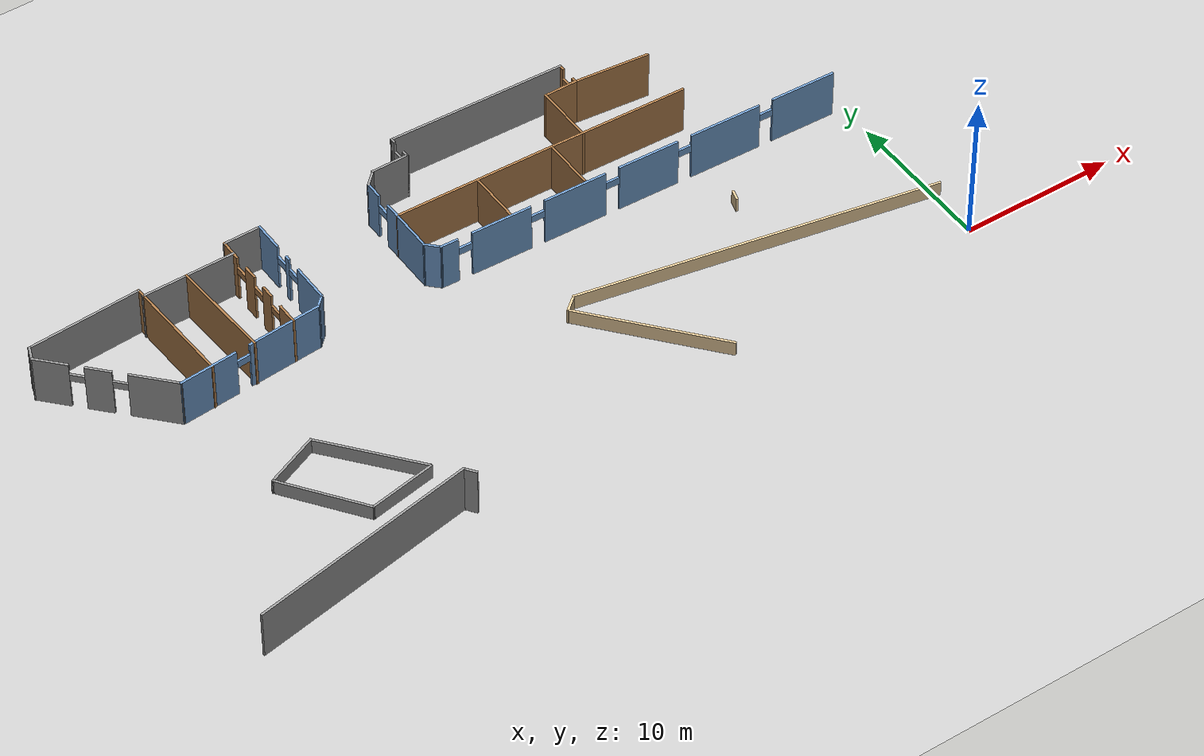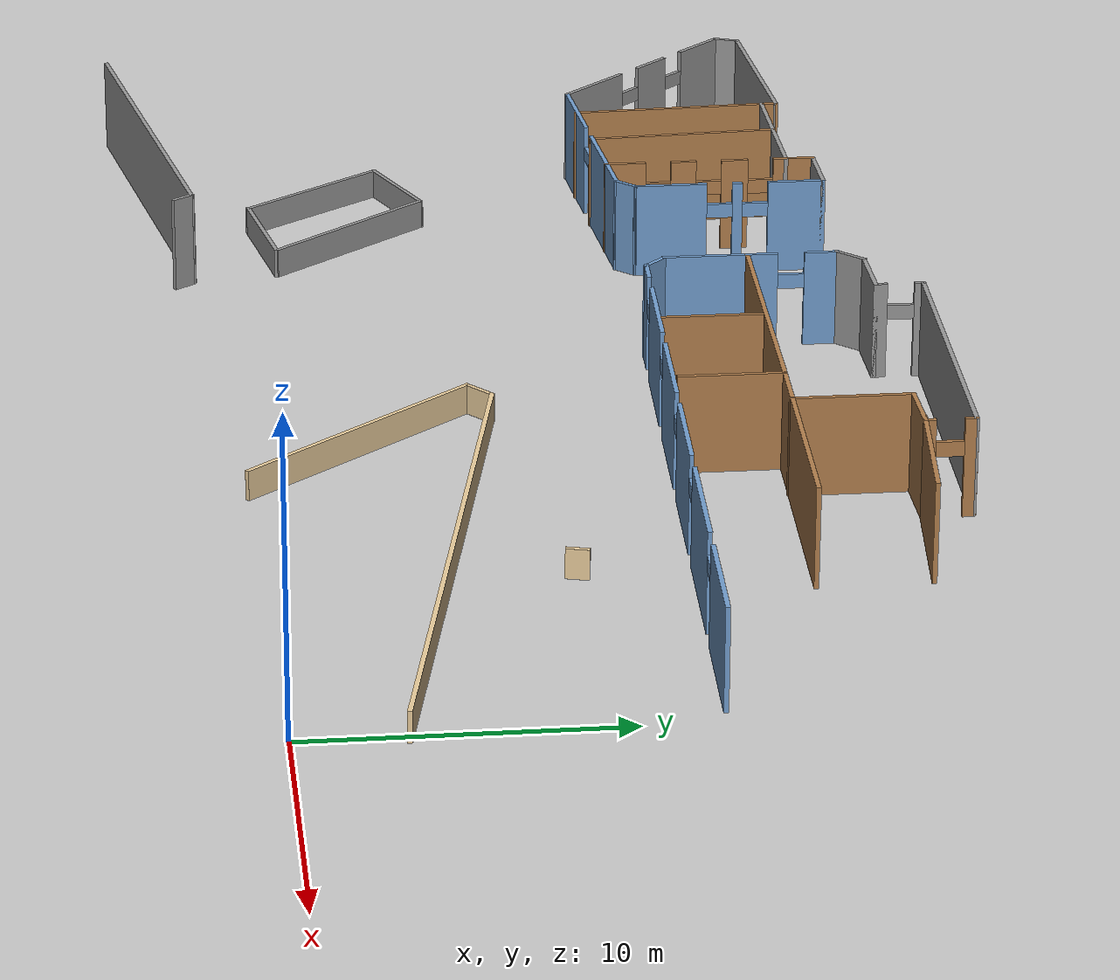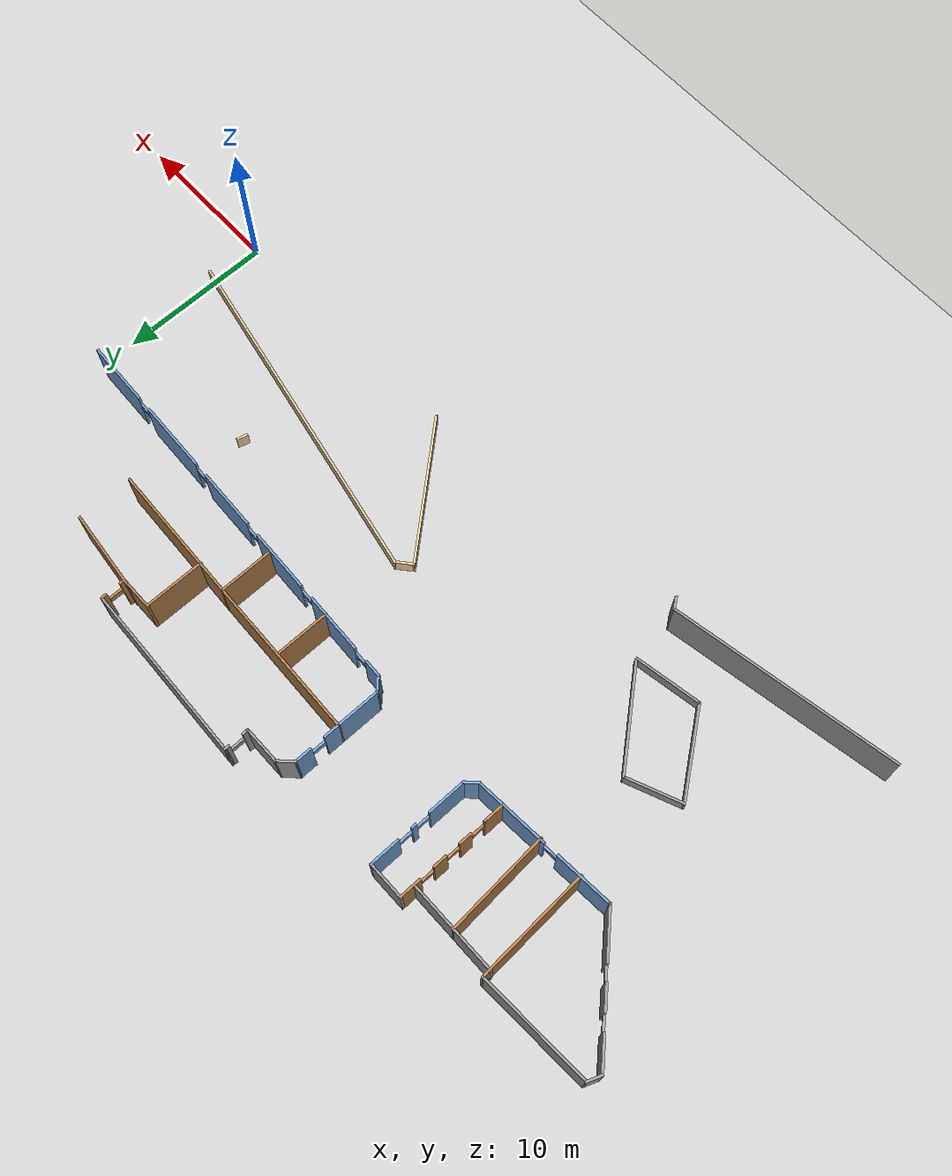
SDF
<sdf version="1.6">
 <world name="default">
  <model name="ground_plane">
   <static>1</static>
   <link name="link">
    <collision name="collision">
     <geometry><plane><normal>0 0 1</normal><size>100 100</size></plane></geometry>
     <surface><friction><ode><mu>100</mu><mu2>50</mu2></ode></friction></surface>
    </collision>
    <visual name="visual">
     <cast_shadows>0</cast_shadows>
     <geometry><plane><normal>0 0 1</normal><size>100 100</size></plane></geometry>
     <material>
      <script><uri>file://media/materials/scripts/gazebo.material</uri><name>Gazebo/Grey</name></script>
     </material>
    </visual>
   </link>
  </model>
  <model name="compound">
   <pose>3.54588 -0.628009 0 0 -0 0</pose>
   <link name="Wall_1">
    <pose>-17.7632 13.6017 0 0 -0 3.10436</pose>
    <visual name="Wall_1_Visual_0">
     <pose>-11.3294 0 1.25 0 -0 0</pose>
     <geometry><box><size>4.30756 0.15 4.0</size></box></geometry>
     <material>
      <script><uri>file://media/materials/scripts/gazebo.material</uri><name>Gazebo/Grey</name></script>
      <ambient>0.447059 0.623529 0.811765 1</ambient>
     </material>
     <meta><layer>0</layer></meta>
    </visual>
    <collision name="Wall_1_Collision_0">
     <geometry><box><size>4.30756 0.15 4.0</size></box></geometry>
     <pose>-11.3294 0 1.25 0 -0 0</pose>
    </collision>
    <visual name="Wall_1_Visual_1">
     <pose>-5.89487 0 1.25 0 -0 0</pose>
     <geometry><box><size>4.76144 0.15 4.0</size></box></geometry>
     <material>
      <script><uri>file://media/materials/scripts/gazebo.material</uri><name>Gazebo/Grey</name></script>
      <ambient>0.447059 0.623529 0.811765 1</ambient>
     </material>
     <meta><layer>0</layer></meta>
    </visual>
    <collision name="Wall_1_Collision_1">
     <geometry><box><size>4.76144 0.15 4.0</size></box></geometry>
     <pose>-5.89487 0 1.25 0 -0 0</pose>
    </collision>
    <visual name="Wall_1_Visual_2">
     <pose>-0.581414 0 1.25 0 -0 0</pose>
     <geometry><box><size>4.06547 0.15 4.0</size></box></geometry>
     <material>
      <script><uri>file://media/materials/scripts/gazebo.material</uri><name>Gazebo/Grey</name></script>
      <ambient>0.447059 0.623529 0.811765 1</ambient>
     </material>
     <meta><layer>0</layer></meta>
    </visual>
    <collision name="Wall_1_Collision_2">
     <geometry><box><size>4.06547 0.15 4.0</size></box></geometry>
     <pose>-0.581414 0 1.25 0 -0 0</pose>
    </collision>
    <visual name="Wall_1_Visual_3">
     <pose>4.42952 0 1.25 0 -0 0</pose>
     <geometry><box><size>4.15639 0.15 4.0</size></box></geometry>
     <material>
      <script><uri>file://media/materials/scripts/gazebo.material</uri><name>Gazebo/Grey</name></script>
      <ambient>0.447059 0.623529 0.811765 1</ambient>
     </material>
     <meta><layer>0</layer></meta>
    </visual>
    <collision name="Wall_1_Collision_3">
     <geometry><box><size>4.15639 0.15 4.0</size></box></geometry>
     <pose>4.42952 0 1.25 0 -0 0</pose>
    </collision>
    <visual name="Wall_1_Visual_4">
     <pose>9.39757 0 1.25 0 -0 0</pose>
     <geometry><box><size>3.97971 0.15 4.0</size></box></geometry>
     <material>
      <script><uri>file://media/materials/scripts/gazebo.material</uri><name>Gazebo/Grey</name></script>
      <ambient>0.447059 0.623529 0.811765 1</ambient>
     </material>
     <meta><layer>0</layer></meta>
    </visual>
    <collision name="Wall_1_Collision_4">
     <geometry><box><size>3.97971 0.15 4.0</size></box></geometry>
     <pose>9.39757 0 1.25 0 -0 0</pose>
    </collision>
    <visual name="Wall_1_Visual_5">
     <pose>12.8853 0 1.25 0 -0 0</pose>
     <geometry><box><size>1.19573 0.15 4.0</size></box></geometry>
     <material>
      <script><uri>file://media/materials/scripts/gazebo.material</uri><name>Gazebo/Grey</name></script>
      <ambient>0.447059 0.623529 0.811765 1</ambient>
     </material>
     <meta><layer>0</layer></meta>
    </visual>
    <collision name="Wall_1_Collision_5">
     <geometry><box><size>1.19573 0.15 4.0</size></box></geometry>
     <pose>12.8853 0 1.25 0 -0 0</pose>
    </collision>
    <visual name="Wall_1_Visual_6">
     <pose>-8.72559 0 2.25 0 -0 0</pose>
     <geometry><box><size>0.9 0.15 0.5</size></box></geometry>
     <material>
      <script><uri>file://media/materials/scripts/gazebo.material</uri><name>Gazebo/Grey</name></script>
      <ambient>0.447059 0.623529 0.811765 1</ambient>
     </material>
     <meta><layer>0</layer></meta>
    </visual>
    <collision name="Wall_1_Collision_6">
     <geometry><box><size>0.9 0.15 0.5</size></box></geometry>
     <pose>-8.72559 0 2.25 0 -0 0</pose>
    </collision>
    <visual name="Wall_1_Visual_7">
     <pose>-3.06415 0 2.25 0 -0 0</pose>
     <geometry><box><size>0.9 0.15 0.5</size></box></geometry>
     <material>
      <script><uri>file://media/materials/scripts/gazebo.material</uri><name>Gazebo/Grey</name></script>
      <ambient>0.447059 0.623529 0.811765 1</ambient>
     </material>
     <meta><layer>0</layer></meta>
    </visual>
    <collision name="Wall_1_Collision_7">
     <geometry><box><size>0.9 0.15 0.5</size></box></geometry>
     <pose>-3.06415 0 2.25 0 -0 0</pose>
    </collision>
    <visual name="Wall_1_Visual_8">
     <pose>1.90132 0 2.25 0 -0 0</pose>
     <geometry><box><size>0.9 0.15 0.5</size></box></geometry>
     <material>
      <script><uri>file://media/materials/scripts/gazebo.material</uri><name>Gazebo/Grey</name></script>
      <ambient>0.447059 0.623529 0.811765 1</ambient>
     </material>
     <meta><layer>0</layer></meta>
    </visual>
    <collision name="Wall_1_Collision_8">
     <geometry><box><size>0.9 0.15 0.5</size></box></geometry>
     <pose>1.90132 0 2.25 0 -0 0</pose>
    </collision>
    <visual name="Wall_1_Visual_9">
     <pose>6.95771 0 2.25 0 -0 0</pose>
     <geometry><box><size>0.9 0.15 0.5</size></box></geometry>
     <material>
      <script><uri>file://media/materials/scripts/gazebo.material</uri><name>Gazebo/Grey</name></script>
      <ambient>0.447059 0.623529 0.811765 1</ambient>
     </material>
     <meta><layer>0</layer></meta>
    </visual>
    <collision name="Wall_1_Collision_9">
     <geometry><box><size>0.9 0.15 0.5</size></box></geometry>
     <pose>6.95771 0 2.25 0 -0 0</pose>
    </collision>
    <visual name="Wall_1_Visual_10">
     <pose>11.8374 0 2.25 0 -0 0</pose>
     <geometry><box><size>0.9 0.15 0.5</size></box></geometry>
     <material>
      <script><uri>file://media/materials/scripts/gazebo.material</uri><name>Gazebo/Grey</name></script>
      <ambient>0.447059 0.623529 0.811765 1</ambient>
     </material>
     <meta><layer>0</layer></meta>
    </visual>
    <collision name="Wall_1_Collision_10">
     <geometry><box><size>0.9 0.15 0.5</size></box></geometry>
     <pose>11.8374 0 2.25 0 -0 0</pose>
    </collision>
   </link>
   <link name="Wall_13">
    <collision name="Wall_13_Collision">
     <geometry><box><size>9.90428 0.15 1</size></box></geometry>
     <pose>0 0 0.5 0 -0 0</pose>
    </collision>
    <visual name="Wall_13_Visual">
     <pose>0 0 0.5 0 -0 0</pose>
     <geometry><box><size>9.90428 0.15 1</size></box></geometry>
     <material>
      <script><uri>file://media/materials/scripts/gazebo.material</uri><name>Gazebo/Grey</name></script>
      <ambient>0.921569 0.807843 0.615686 1</ambient>
     </material>
     <meta><layer>0</layer></meta>
    </visual>
    <pose>-23.6257 3.99058 0 0 -0 2.27942</pose>
   </link>
   <link name="Wall_14">
    <collision name="Wall_14_Collision">
     <geometry><box><size>1.29262 0.15 1</size></box></geometry>
     <pose>0 0 0.5 0 -0 0</pose>
    </collision>
    <visual name="Wall_14_Visual">
     <pose>0 0 0.5 0 -0 0</pose>
     <geometry><box><size>1.29262 0.15 1</size></box></geometry>
     <material>
      <script><uri>file://media/materials/scripts/gazebo.material</uri><name>Gazebo/Grey</name></script>
      <ambient>0.921569 0.807843 0.615686 1</ambient>
     </material>
     <meta><layer>0</layer></meta>
    </visual>
    <pose>-26.3627 8.06158 0 0 -0 0.699893</pose>
   </link>
   <link name="Wall_15">
    <collision name="Wall_15_Collision">
     <geometry><box><size>23.2991 0.15 1</size></box></geometry>
     <pose>0 0 0.5 0 -0 0</pose>
    </collision>
    <visual name="Wall_15_Visual">
     <pose>0 0 0.5 0 -0 0</pose>
     <geometry><box><size>23.2991 0.15 1</size></box></geometry>
     <material>
      <script><uri>file://media/materials/scripts/gazebo.material</uri><name>Gazebo/Grey</name></script>
      <ambient>0.921569 0.807843 0.615686 1</ambient>
     </material>
     <meta><layer>0</layer></meta>
    </visual>
    <pose>-14.5637 6.22158 0 0 -0 -0.19194</pose>
   </link>
   <link name="Wall_2">
    <collision name="Wall_2_Collision">
     <geometry><box><size>1.1338 0.15 4.0</size></box></geometry>
     <pose>0 0 1.25 0 -0 0</pose>
    </collision>
    <visual name="Wall_2_Visual">
     <pose>0 0 1.25 0 -0 0</pose>
     <geometry><box><size>1.1338 0.15 4.0</size></box></geometry>
     <material>
      <script><uri>file://media/materials/scripts/gazebo.material</uri><name>Gazebo/Grey</name></script>
      <ambient>0.447059 0.623529 0.811765 1</ambient>
     </material>
     <meta><layer>0</layer></meta>
    </visual>
    <pose>-31.5098 14.4485 0 0 -0 2.35619</pose>
   </link>
   <link name="Wall_233">
    <collision name="Wall_233_Collision">
     <geometry><box><size>5.21653 0.15 4.0</size></box></geometry>
     <pose>0 0 1.25 0 -0 0</pose>
    </collision>
    <visual name="Wall_233_Visual">
     <pose>0 0 1.25 0 -0 0</pose>
     <geometry><box><size>5.21653 0.15 4.0</size></box></geometry>
     <material>
      <script><uri>file://media/materials/scripts/gazebo.material</uri><name>Gazebo/Wood</name></script>
      <ambient>1 1 1 1</ambient>
     </material>
     <meta><layer>0</layer></meta>
    </visual>
    <pose>-14.9305 20.8107 0 0 -0 3.04125</pose>
   </link>
   <link name="Wall_27">
    <collision name="Wall_27_Collision">
     <geometry><box><size>0.896268 0.15 4.0</size></box></geometry>
     <pose>0 0 1.25 0 -0 0</pose>
    </collision>
    <visual name="Wall_27_Visual">
     <pose>0 0 1.25 0 -0 0</pose>
     <geometry><box><size>0.896268 0.15 4.0</size></box></geometry>
     <material>
      <script><uri>file://media/materials/scripts/gazebo.material</uri><name>Gazebo/Grey</name></script>
      <ambient>1 1 1 1</ambient>
     </material>
     <meta><layer>0</layer></meta>
    </visual>
    <pose>-39.2137 -1.08432 0 0 -0 2.20525</pose>
   </link>
   <link name="Wall_3">
    <pose>-31.8577 17.7214 0 0 -0 1.5708</pose>
    <visual name="Wall_3_Visual_0">
     <pose>-1.04496 0 1.25 0 -0 0</pose>
     <geometry><box><size>3.91008 0.15 4.0</size></box></geometry>
     <material>
      <script><uri>file://media/materials/scripts/gazebo.material</uri><name>Gazebo/Grey</name></script>
      <ambient>0.447059 0.623529 0.811765 1</ambient>
     </material>
     <meta><layer>0</layer></meta>
    </visual>
    <collision name="Wall_3_Collision_0">
     <geometry><box><size>3.91008 0.15 4.0</size></box></geometry>
     <pose>-1.04496 0 1.25 0 -0 0</pose>
    </collision>
    <visual name="Wall_3_Visual_1">
     <pose>2.40504 0 1.25 0 -0 0</pose>
     <geometry><box><size>1.18992 0.15 4.0</size></box></geometry>
     <material>
      <script><uri>file://media/materials/scripts/gazebo.material</uri><name>Gazebo/Grey</name></script>
      <ambient>0.447059 0.623529 0.811765 1</ambient>
     </material>
     <meta><layer>0</layer></meta>
    </visual>
    <collision name="Wall_3_Collision_1">
     <geometry><box><size>1.18992 0.15 4.0</size></box></geometry>
     <pose>2.40504 0 1.25 0 -0 0</pose>
    </collision>
    <visual name="Wall_3_Visual_2">
     <pose>1.36008 0 2.25 0 -0 0</pose>
     <geometry><box><size>0.9 0.15 0.5</size></box></geometry>
     <material>
      <script><uri>file://media/materials/scripts/gazebo.material</uri><name>Gazebo/Grey</name></script>
      <ambient>0.447059 0.623529 0.811765 1</ambient>
     </material>
     <meta><layer>0</layer></meta>
    </visual>
    <collision name="Wall_3_Collision_2">
     <geometry><box><size>0.9 0.15 0.5</size></box></geometry>
     <pose>1.36008 0 2.25 0 -0 0</pose>
    </collision>
   </link>
   <link name="Wall_34">
    <collision name="Wall_34_Collision">
     <geometry><box><size>0.75 0.15 1</size></box></geometry>
     <pose>0 0 0.5 0 -0 0</pose>
    </collision>
    <visual name="Wall_34_Visual">
     <pose>0 0 0.5 0 -0 0</pose>
     <geometry><box><size>0.75 0.15 1</size></box></geometry>
     <material>
      <script><uri>file://media/materials/scripts/gazebo.material</uri><name>Gazebo/Grey</name></script>
      <ambient>0.921569 0.807843 0.615686 1</ambient>
     </material>
     <meta><layer>0</layer></meta>
    </visual>
    <pose>-13.6151 9.87736 0 0 -0 1.309</pose>
   </link>
   <link name="Wall_45">
    <collision name="Wall_45_Collision">
     <geometry><box><size>14.9409 0.15 4.0</size></box></geometry>
     <pose>0 0 1.25 0 -0 0</pose>
    </collision>
    <visual name="Wall_45_Visual">
     <pose>0 0 1.25 0 -0 0</pose>
     <geometry><box><size>14.9409 0.15 4.0</size></box></geometry>
     <material>
      <script><uri>file://media/materials/scripts/gazebo.material</uri><name>Gazebo/Grey</name></script>
      <ambient>1 1 1 1</ambient>
     </material>
     <meta><layer>0</layer></meta>
    </visual>
    <pose>-46.71 -2.11245 0 0 -0 -2.96095</pose>
   </link>
   <link name="Wall_47">
    <collision name="Wall_47_Collision">
     <geometry><box><size>7.06002 0.15 1</size></box></geometry>
     <pose>0 0 0.5 0 -0 0</pose>
    </collision>
    <visual name="Wall_47_Visual">
     <pose>0 0 0.5 0 -0 0</pose>
     <geometry><box><size>7.06002 0.15 1</size></box></geometry>
     <material>
      <script><uri>file://media/materials/scripts/gazebo.material</uri><name>Gazebo/Grey</name></script>
      <ambient>1 1 1 1</ambient>
     </material>
     <meta><layer>0</layer></meta>
    </visual>
    <pose>-41.9392 4.87008 0 0 -0 2.26459</pose>
   </link>
   <link name="Wall_48">
    <collision name="Wall_48_Collision">
     <geometry><box><size>3.77958 0.15 1</size></box></geometry>
     <pose>0 0 0.5 0 -0 0</pose>
    </collision>
    <visual name="Wall_48_Visual">
     <pose>0 0 0.5 0 -0 0</pose>
     <geometry><box><size>3.77958 0.15 1</size></box></geometry>
     <material>
      <script><uri>file://media/materials/scripts/gazebo.material</uri><name>Gazebo/Grey</name></script>
      <ambient>1 1 1 1</ambient>
     </material>
     <meta><layer>0</layer></meta>
    </visual>
    <pose>-45.8187 6.81608 0 0 -0 -2.73934</pose>
   </link>
   <link name="Wall_49">
    <collision name="Wall_49_Collision">
     <geometry><box><size>6.0519 0.15 1</size></box></geometry>
     <pose>0 0 0.5 0 -0 0</pose>
    </collision>
    <visual name="Wall_49_Visual">
     <pose>0 0 0.5 0 -0 0</pose>
     <geometry><box><size>6.0519 0.15 1</size></box></geometry>
     <material>
      <script><uri>file://media/materials/scripts/gazebo.material</uri><name>Gazebo/Grey</name></script>
      <ambient>1 1 1 1</ambient>
     </material>
     <meta><layer>0</layer></meta>
    </visual>
    <pose>-45.7267 3.73858 0 0 -0 -0.930887</pose>
   </link>
   <link name="Wall_5">
    <collision name="Wall_5_Collision">
     <geometry><box><size>1.25 0.15 4.0</size></box></geometry>
     <pose>0 0 1.25 0 -0 0</pose>
    </collision>
    <visual name="Wall_5_Visual">
     <pose>0 0 1.25 0 -0 0</pose>
     <geometry><box><size>1.25 0.15 4.0</size></box></geometry>
     <material>
      <script><uri>file://media/materials/scripts/gazebo.material</uri><name>Gazebo/Grey</name></script>
      <ambient>1 1 1 1</ambient>
     </material>
     <meta><layer>0</layer></meta>
    </visual>
    <pose>-31.4688 21.0353 0 0 -0 0.785398</pose>
   </link>
   <link name="Wall_50">
    <collision name="Wall_50_Collision">
     <geometry><box><size>4.45255 0.15 1</size></box></geometry>
     <pose>0 0 0.5 0 -0 0</pose>
    </collision>
    <visual name="Wall_50_Visual">
     <pose>0 0 0.5 0 -0 0</pose>
     <geometry><box><size>4.45255 0.15 1</size></box></geometry>
     <material>
      <script><uri>file://media/materials/scripts/gazebo.material</uri><name>Gazebo/Grey</name></script>
      <ambient>1 1 1 1</ambient>
     </material>
     <meta><layer>0</layer></meta>
    </visual>
    <pose>-41.8472 1.75308 0 0 -0 0.178253</pose>
   </link>
   <link name="Wall_59">
    <collision name="Wall_59_Collision">
     <geometry><box><size>9.16964 0.15 4.0</size></box></geometry>
     <pose>0 0 1.25 0 -0 0</pose>
    </collision>
    <visual name="Wall_59_Visual">
     <pose>0 0 1.25 0 -0 0</pose>
     <geometry><box><size>9.16964 0.15 4.0</size></box></geometry>
     <material>
      <script><uri>file://media/materials/scripts/gazebo.material</uri><name>Gazebo/Wood</name></script>
      <ambient>1 1 1 1</ambient>
     </material>
     <meta><layer>0</layer></meta>
    </visual>
    <pose>-16.9166 17.127 0 0 -0 3.10389</pose>
   </link>
   <link name="Wall_60">
    <collision name="Wall_60_Collision">
     <geometry><box><size>3.5 0.15 4.0</size></box></geometry>
     <pose>0 0 1.25 0 -0 0</pose>
    </collision>
    <visual name="Wall_60_Visual">
     <pose>0 0 1.25 0 -0 0</pose>
     <geometry><box><size>3.5 0.15 4.0</size></box></geometry>
     <material>
      <script><uri>file://media/materials/scripts/gazebo.material</uri><name>Gazebo/Wood</name></script>
      <ambient>1 1 1 1</ambient>
     </material>
     <meta><layer>0</layer></meta>
    </visual>
    <pose>-21.4232 15.6219 0 0 -0 -1.5708</pose>
   </link>
   <link name="Wall_62">
    <collision name="Wall_62_Collision">
     <geometry><box><size>10.5892 0.15 4.0</size></box></geometry>
     <pose>0 0 1.25 0 -0 0</pose>
    </collision>
    <visual name="Wall_62_Visual">
     <pose>0 0 1.25 0 -0 0</pose>
     <geometry><box><size>10.5892 0.15 4.0</size></box></geometry>
     <material>
      <script><uri>file://media/materials/scripts/gazebo.material</uri><name>Gazebo/Wood</name></script>
      <ambient>1 1 1 1</ambient>
     </material>
     <meta><layer>0</layer></meta>
    </visual>
    <pose>-26.6406 17.4482 0 0 -0 3.11261</pose>
   </link>
   <link name="Wall_64">
    <collision name="Wall_64_Collision">
     <geometry><box><size>2.5 0.15 4.0</size></box></geometry>
     <pose>0 0 1.25 0 -0 0</pose>
    </collision>
    <visual name="Wall_64_Visual">
     <pose>0 0 1.25 0 -0 0</pose>
     <geometry><box><size>2.5 0.15 4.0</size></box></geometry>
     <material>
      <script><uri>file://media/materials/scripts/gazebo.material</uri><name>Gazebo/Grey</name></script>
      <ambient>1 1 1 1</ambient>
     </material>
     <meta><layer>0</layer></meta>
    </visual>
    <pose>-29.9049 21.4242 0 0 -0 0</pose>
   </link>
   <link name="Wall_65">
    <pose>-28.7299 22.2242 0 0 -0 1.5708</pose>
    <visual name="Wall_65_Visual_0">
     <pose>-0.637416 0 1.25 0 -0 0</pose>
     <geometry><box><size>0.475168 0.15 4.0</size></box></geometry>
     <material>
      <script><uri>file://media/materials/scripts/gazebo.material</uri><name>Gazebo/Grey</name></script>
      <ambient>1 1 1 1</ambient>
     </material>
     <meta><layer>0</layer></meta>
    </visual>
    <collision name="Wall_65_Collision_0">
     <geometry><box><size>0.475168 0.15 4.0</size></box></geometry>
     <pose>-0.637416 0 1.25 0 -0 0</pose>
    </collision>
    <visual name="Wall_65_Visual_1">
     <pose>0.687584 0 1.25 0 -0 0</pose>
     <geometry><box><size>0.374832 0.15 4.0</size></box></geometry>
     <material>
      <script><uri>file://media/materials/scripts/gazebo.material</uri><name>Gazebo/Grey</name></script>
      <ambient>1 1 1 1</ambient>
     </material>
     <meta><layer>0</layer></meta>
    </visual>
    <collision name="Wall_65_Collision_1">
     <geometry><box><size>0.374832 0.15 4.0</size></box></geometry>
     <pose>0.687584 0 1.25 0 -0 0</pose>
    </collision>
    <visual name="Wall_65_Visual_2">
     <pose>0.050168 0 2.25 0 -0 0</pose>
     <geometry><box><size>0.9 0.15 0.5</size></box></geometry>
     <material>
      <script><uri>file://media/materials/scripts/gazebo.material</uri><name>Gazebo/Grey</name></script>
      <ambient>1 1 1 1</ambient>
     </material>
     <meta><layer>0</layer></meta>
    </visual>
    <collision name="Wall_65_Collision_2">
     <geometry><box><size>0.9 0.15 0.5</size></box></geometry>
     <pose>0.050168 0 2.25 0 -0 0</pose>
    </collision>
   </link>
   <link name="Wall_66">
    <collision name="Wall_66_Collision">
     <geometry><box><size>11.6776 0.15 4.0</size></box></geometry>
     <pose>0 0 1.25 0 -0 0</pose>
    </collision>
    <visual name="Wall_66_Visual">
     <pose>0 0 1.25 0 -0 0</pose>
     <geometry><box><size>11.6776 0.15 4.0</size></box></geometry>
     <material>
      <script><uri>file://media/materials/scripts/gazebo.material</uri><name>Gazebo/Grey</name></script>
      <ambient>1 1 1 1</ambient>
     </material>
     <meta><layer>0</layer></meta>
    </visual>
    <pose>-22.9693 22.8307 0 0 -0 -0.033573</pose>
   </link>
   <link name="Wall_67">
    <pose>-17.2087 21.8372 0 0 -0 -1.5708</pose>
    <visual name="Wall_67_Visual_0">
     <pose>-0.657503 0 1.25 0 -0 0</pose>
     <geometry><box><size>0.434994 0.15 4.0</size></box></geometry>
     <material>
      <script><uri>file://media/materials/scripts/gazebo.material</uri><name>Gazebo/Wood</name></script>
      <ambient>1 1 1 1</ambient>
     </material>
     <meta><layer>0</layer></meta>
    </visual>
    <collision name="Wall_67_Collision_0">
     <geometry><box><size>0.434994 0.15 4.0</size></box></geometry>
     <pose>-0.657503 0 1.25 0 -0 0</pose>
    </collision>
    <visual name="Wall_67_Visual_1">
     <pose>0.667497 0 1.25 0 -0 0</pose>
     <geometry><box><size>0.415006 0.15 4.0</size></box></geometry>
     <material>
      <script><uri>file://media/materials/scripts/gazebo.material</uri><name>Gazebo/Wood</name></script>
      <ambient>1 1 1 1</ambient>
     </material>
     <meta><layer>0</layer></meta>
    </visual>
    <collision name="Wall_67_Collision_1">
     <geometry><box><size>0.415006 0.15 4.0</size></box></geometry>
     <pose>0.667497 0 1.25 0 -0 0</pose>
    </collision>
    <visual name="Wall_67_Visual_2">
     <pose>0.009994 0 2.25 0 -0 0</pose>
     <geometry><box><size>0.9 0.15 0.5</size></box></geometry>
     <material>
      <script><uri>file://media/materials/scripts/gazebo.material</uri><name>Gazebo/Wood</name></script>
      <ambient>1 1 1 1</ambient>
     </material>
     <meta><layer>0</layer></meta>
    </visual>
    <collision name="Wall_67_Collision_2">
     <geometry><box><size>0.9 0.15 0.5</size></box></geometry>
     <pose>0.009994 0 2.25 0 -0 0</pose>
    </collision>
   </link>
   <link name="Wall_68">
    <collision name="Wall_68_Collision">
     <geometry><box><size>2.25 0.15 4.0</size></box></geometry>
     <pose>0 0 1.25 0 -0 0</pose>
    </collision>
    <visual name="Wall_68_Visual">
     <pose>0 0 1.25 0 -0 0</pose>
     <geometry><box><size>2.25 0.15 4.0</size></box></geometry>
     <material>
      <script><uri>file://media/materials/scripts/gazebo.material</uri><name>Gazebo/Wood</name></script>
      <ambient>1 1 1 1</ambient>
     </material>
     <meta><layer>0</layer></meta>
    </visual>
    <pose>-18.2587 21.0372 0 0 -0 3.14159</pose>
   </link>
   <link name="Wall_69">
    <collision name="Wall_69_Collision">
     <geometry><box><size>4 0.15 4.0</size></box></geometry>
     <pose>0 0 1.25 0 -0 0</pose>
    </collision>
    <visual name="Wall_69_Visual">
     <pose>0 0 1.25 0 -0 0</pose>
     <geometry><box><size>4 0.15 4.0</size></box></geometry>
     <material>
      <script><uri>file://media/materials/scripts/gazebo.material</uri><name>Gazebo/Wood</name></script>
      <ambient>1 1 1 1</ambient>
     </material>
     <meta><layer>0</layer></meta>
    </visual>
    <pose>-19.3087 19.1122 0 0 -0 -1.5708</pose>
   </link>
   <link name="Wall_71">
    <collision name="Wall_71_Collision">
     <geometry><box><size>2.5 0.15 4.0</size></box></geometry>
     <pose>0 0 1.25 0 -0 0</pose>
    </collision>
    <visual name="Wall_71_Visual">
     <pose>0 0 1.25 0 -0 0</pose>
     <geometry><box><size>2.5 0.15 4.0</size></box></geometry>
     <material>
      <script><uri>file://media/materials/scripts/gazebo.material</uri><name>Gazebo/Grey</name></script>
      <ambient>1 1 1 1</ambient>
     </material>
     <meta><layer>0</layer></meta>
    </visual>
    <pose>-39.9988 21.2686 0 0 -0 3.14159</pose>
   </link>
   <link name="Wall_72">
    <pose>-41.1738 17.5936 0 0 -0 -1.5708</pose>
    <visual name="Wall_72_Visual_0">
     <pose>-3.0058 0 1.25 0 -0 0</pose>
     <geometry><box><size>1.4884 0.15 4.0</size></box></geometry>
     <material>
      <script><uri>file://media/materials/scripts/gazebo.material</uri><name>Gazebo/Wood</name></script>
      <ambient>1 1 1 1</ambient>
     </material>
     <meta><layer>0</layer></meta>
    </visual>
    <collision name="Wall_72_Collision_0">
     <geometry><box><size>1.4884 0.15 4.0</size></box></geometry>
     <pose>-3.0058 0 1.25 0 -0 0</pose>
    </collision>
    <visual name="Wall_72_Visual_1">
     <pose>-0.88642 0 1.25 0 -0 0</pose>
     <geometry><box><size>0.950362 0.15 4.0</size></box></geometry>
     <material>
      <script><uri>file://media/materials/scripts/gazebo.material</uri><name>Gazebo/Wood</name></script>
      <ambient>1 1 1 1</ambient>
     </material>
     <meta><layer>0</layer></meta>
    </visual>
    <collision name="Wall_72_Collision_1">
     <geometry><box><size>0.950362 0.15 4.0</size></box></geometry>
     <pose>-0.88642 0 1.25 0 -0 0</pose>
    </collision>
    <visual name="Wall_72_Visual_2">
     <pose>0.938003 0 1.25 0 -0 0</pose>
     <geometry><box><size>0.898483 0.15 4.0</size></box></geometry>
     <material>
      <script><uri>file://media/materials/scripts/gazebo.material</uri><name>Gazebo/Wood</name></script>
      <ambient>1 1 1 1</ambient>
     </material>
     <meta><layer>0</layer></meta>
    </visual>
    <collision name="Wall_72_Collision_2">
     <geometry><box><size>0.898483 0.15 4.0</size></box></geometry>
     <pose>0.938003 0 1.25 0 -0 0</pose>
    </collision>
    <visual name="Wall_72_Visual_3">
     <pose>3.01862 0 1.25 0 -0 0</pose>
     <geometry><box><size>1.46276 0.15 4.0</size></box></geometry>
     <material>
      <script><uri>file://media/materials/scripts/gazebo.material</uri><name>Gazebo/Wood</name></script>
      <ambient>1 1 1 1</ambient>
     </material>
     <meta><layer>0</layer></meta>
    </visual>
    <collision name="Wall_72_Collision_3">
     <geometry><box><size>1.46276 0.15 4.0</size></box></geometry>
     <pose>3.01862 0 1.25 0 -0 0</pose>
    </collision>
    <visual name="Wall_72_Visual_4">
     <pose>-1.8116 0 2.25 0 -0 0</pose>
     <geometry><box><size>0.9 0.15 0.5</size></box></geometry>
     <material>
      <script><uri>file://media/materials/scripts/gazebo.material</uri><name>Gazebo/Wood</name></script>
      <ambient>1 1 1 1</ambient>
     </material>
     <meta><layer>0</layer></meta>
    </visual>
    <collision name="Wall_72_Collision_4">
     <geometry><box><size>0.9 0.15 0.5</size></box></geometry>
     <pose>-1.8116 0 2.25 0 -0 0</pose>
    </collision>
    <visual name="Wall_72_Visual_5">
     <pose>0.038761 0 2.25 0 -0 0</pose>
     <geometry><box><size>0.9 0.15 0.5</size></box></geometry>
     <material>
      <script><uri>file://media/materials/scripts/gazebo.material</uri><name>Gazebo/Wood</name></script>
      <ambient>1 1 1 1</ambient>
     </material>
     <meta><layer>0</layer></meta>
    </visual>
    <collision name="Wall_72_Collision_5">
     <geometry><box><size>0.9 0.15 0.5</size></box></geometry>
     <pose>0.038761 0 2.25 0 -0 0</pose>
    </collision>
    <visual name="Wall_72_Visual_6">
     <pose>1.83725 0 2.25 0 -0 0</pose>
     <geometry><box><size>0.9 0.15 0.5</size></box></geometry>
     <material>
      <script><uri>file://media/materials/scripts/gazebo.material</uri><name>Gazebo/Wood</name></script>
      <ambient>1 1 1 1</ambient>
     </material>
     <meta><layer>0</layer></meta>
    </visual>
    <collision name="Wall_72_Collision_6">
     <geometry><box><size>0.9 0.15 0.5</size></box></geometry>
     <pose>1.83725 0 2.25 0 -0 0</pose>
    </collision>
   </link>
   <link name="Wall_74">
    <collision name="Wall_74_Collision">
     <geometry><box><size>3.25 0.15 4.0</size></box></geometry>
     <pose>0 0 1.25 0 -0 0</pose>
    </collision>
    <visual name="Wall_74_Visual">
     <pose>0 0 1.25 0 -0 0</pose>
     <geometry><box><size>3.25 0.15 4.0</size></box></geometry>
     <material>
      <script><uri>file://media/materials/scripts/gazebo.material</uri><name>Gazebo/Grey</name></script>
      <ambient>1 1 1 1</ambient>
     </material>
     <meta><layer>0</layer></meta>
    </visual>
    <pose>-42.7235 20.3044 0 0 -0 3.14159</pose>
   </link>
   <link name="Wall_76">
    <collision name="Wall_76_Collision">
     <geometry><box><size>6.78328 0.15 4.0</size></box></geometry>
     <pose>0 0 1.25 0 -0 0</pose>
    </collision>
    <visual name="Wall_76_Visual">
     <pose>0 0 1.25 0 -0 0</pose>
     <geometry><box><size>6.78328 0.15 4.0</size></box></geometry>
     <material>
      <script><uri>file://media/materials/scripts/gazebo.material</uri><name>Gazebo/Wood</name></script>
      <ambient>1 1 1 1</ambient>
     </material>
     <meta><layer>0</layer></meta>
    </visual>
    <pose>-44.0711 16.994 0 0 -0 -1.50973</pose>
   </link>
   <link name="Wall_78">
    <pose>-44.1297 13.7147 0 0 -0 -3.06674</pose>
    <visual name="Wall_78_Visual_0">
     <pose>-2.35955 0 1.25 0 -0 0</pose>
     <geometry><box><size>4.867 0.15 4.0</size></box></geometry>
     <material>
      <script><uri>file://media/materials/scripts/gazebo.material</uri><name>Gazebo/Grey</name></script>
      <ambient>0.447059 0.623529 0.811765 1</ambient>
     </material>
     <meta><layer>0</layer></meta>
    </visual>
    <collision name="Wall_78_Collision_0">
     <geometry><box><size>4.867 0.15 4.0</size></box></geometry>
     <pose>-2.35955 0 1.25 0 -0 0</pose>
    </collision>
    <visual name="Wall_78_Visual_1">
     <pose>2.8835 0 1.25 0 -0 0</pose>
     <geometry><box><size>3.8191 0.15 4.0</size></box></geometry>
     <material>
      <script><uri>file://media/materials/scripts/gazebo.material</uri><name>Gazebo/Grey</name></script>
      <ambient>0.447059 0.623529 0.811765 1</ambient>
     </material>
     <meta><layer>0</layer></meta>
    </visual>
    <collision name="Wall_78_Collision_1">
     <geometry><box><size>3.8191 0.15 4.0</size></box></geometry>
     <pose>2.8835 0 1.25 0 -0 0</pose>
    </collision>
    <visual name="Wall_78_Visual_2">
     <pose>0.523951 0 2.25 0 -0 0</pose>
     <geometry><box><size>0.9 0.15 0.5</size></box></geometry>
     <material>
      <script><uri>file://media/materials/scripts/gazebo.material</uri><name>Gazebo/Grey</name></script>
      <ambient>0.447059 0.623529 0.811765 1</ambient>
     </material>
     <meta><layer>0</layer></meta>
    </visual>
    <collision name="Wall_78_Collision_2">
     <geometry><box><size>0.9 0.15 0.5</size></box></geometry>
     <pose>0.523951 0 2.25 0 -0 0</pose>
    </collision>
   </link>
   <link name="Wall_8">
    <pose>-38.8238 17.9686 0 0 -0 -1.5708</pose>
    <visual name="Wall_8_Visual_0">
     <pose>-2.36706 0 1.25 0 -0 0</pose>
     <geometry><box><size>2.01588 0.15 4.0</size></box></geometry>
     <material>
      <script><uri>file://media/materials/scripts/gazebo.material</uri><name>Gazebo/Grey</name></script>
      <ambient>0.447059 0.623529 0.811765 1</ambient>
     </material>
     <meta><layer>0</layer></meta>
    </visual>
    <collision name="Wall_8_Collision_0">
     <geometry><box><size>2.01588 0.15 4.0</size></box></geometry>
     <pose>-2.36706 0 1.25 0 -0 0</pose>
    </collision>
    <visual name="Wall_8_Visual_1">
     <pose>-0.281464 0 1.25 0 -0 0</pose>
     <geometry><box><size>0.355303 0.15 4.0</size></box></geometry>
     <material>
      <script><uri>file://media/materials/scripts/gazebo.material</uri><name>Gazebo/Grey</name></script>
      <ambient>0.447059 0.623529 0.811765 1</ambient>
     </material>
     <meta><layer>0</layer></meta>
    </visual>
    <collision name="Wall_8_Collision_1">
     <geometry><box><size>0.355303 0.15 4.0</size></box></geometry>
     <pose>-0.281464 0 1.25 0 -0 0</pose>
    </collision>
    <visual name="Wall_8_Visual_2">
     <pose>2.08559 0 1.25 0 -0 0</pose>
     <geometry><box><size>2.57881 0.15 4.0</size></box></geometry>
     <material>
      <script><uri>file://media/materials/scripts/gazebo.material</uri><name>Gazebo/Grey</name></script>
      <ambient>0.447059 0.623529 0.811765 1</ambient>
     </material>
     <meta><layer>0</layer></meta>
    </visual>
    <collision name="Wall_8_Collision_2">
     <geometry><box><size>2.57881 0.15 4.0</size></box></geometry>
     <pose>2.08559 0 1.25 0 -0 0</pose>
    </collision>
    <visual name="Wall_8_Visual_3">
     <pose>-0.909115 0 2.25 0 -0 0</pose>
     <geometry><box><size>0.9 0.15 0.5</size></box></geometry>
     <material>
      <script><uri>file://media/materials/scripts/gazebo.material</uri><name>Gazebo/Grey</name></script>
      <ambient>0.447059 0.623529 0.811765 1</ambient>
     </material>
     <meta><layer>0</layer></meta>
    </visual>
    <collision name="Wall_8_Collision_3">
     <geometry><box><size>0.9 0.15 0.5</size></box></geometry>
     <pose>-0.909115 0 2.25 0 -0 0</pose>
    </collision>
    <visual name="Wall_8_Visual_4">
     <pose>0.346188 0 2.25 0 -0 0</pose>
     <geometry><box><size>0.9 0.15 0.5</size></box></geometry>
     <material>
      <script><uri>file://media/materials/scripts/gazebo.material</uri><name>Gazebo/Grey</name></script>
      <ambient>0.447059 0.623529 0.811765 1</ambient>
     </material>
     <meta><layer>0</layer></meta>
    </visual>
    <collision name="Wall_8_Collision_4">
     <geometry><box><size>0.9 0.15 0.5</size></box></geometry>
     <pose>0.346188 0 2.25 0 -0 0</pose>
    </collision>
   </link>
   <link name="Wall_80">
    <pose>-51.7877 16.5001 0 0 -0 2.32583</pose>
    <visual name="Wall_80_Visual_0">
     <pose>-2.81008 0 1.25 0 -0 0</pose>
     <geometry><box><size>3.14834 0.15 4.0</size></box></geometry>
     <material>
      <script><uri>file://media/materials/scripts/gazebo.material</uri><name>Gazebo/Grey</name></script>
      <ambient>1 1 1 1</ambient>
     </material>
     <meta><layer>0</layer></meta>
    </visual>
    <collision name="Wall_80_Collision_0">
     <geometry><box><size>3.14834 0.15 4.0</size></box></geometry>
     <pose>-2.81008 0 1.25 0 -0 0</pose>
    </collision>
    <visual name="Wall_80_Visual_1">
     <pose>0.467556 0 1.25 0 -0 0</pose>
     <geometry><box><size>1.60692 0.15 4.0</size></box></geometry>
     <material>
      <script><uri>file://media/materials/scripts/gazebo.material</uri><name>Gazebo/Grey</name></script>
      <ambient>1 1 1 1</ambient>
     </material>
     <meta><layer>0</layer></meta>
    </visual>
    <collision name="Wall_80_Collision_1">
     <geometry><box><size>1.60692 0.15 4.0</size></box></geometry>
     <pose>0.467556 0 1.25 0 -0 0</pose>
    </collision>
    <visual name="Wall_80_Visual_2">
     <pose>3.27763 0 1.25 0 -0 0</pose>
     <geometry><box><size>2.21323 0.15 4.0</size></box></geometry>
     <material>
      <script><uri>file://media/materials/scripts/gazebo.material</uri><name>Gazebo/Grey</name></script>
      <ambient>1 1 1 1</ambient>
     </material>
     <meta><layer>0</layer></meta>
    </visual>
    <collision name="Wall_80_Collision_2">
     <geometry><box><size>2.21323 0.15 4.0</size></box></geometry>
     <pose>3.27763 0 1.25 0 -0 0</pose>
    </collision>
    <visual name="Wall_80_Visual_3">
     <pose>-0.785905 0 2.25 0 -0 0</pose>
     <geometry><box><size>0.9 0.15 0.5</size></box></geometry>
     <material>
      <script><uri>file://media/materials/scripts/gazebo.material</uri><name>Gazebo/Grey</name></script>
      <ambient>1 1 1 1</ambient>
     </material>
     <meta><layer>0</layer></meta>
    </visual>
    <collision name="Wall_80_Collision_3">
     <geometry><box><size>0.9 0.15 0.5</size></box></geometry>
     <pose>-0.785905 0 2.25 0 -0 0</pose>
    </collision>
    <visual name="Wall_80_Visual_4">
     <pose>1.72102 0 2.25 0 -0 0</pose>
     <geometry><box><size>0.9 0.15 0.5</size></box></geometry>
     <material>
      <script><uri>file://media/materials/scripts/gazebo.material</uri><name>Gazebo/Grey</name></script>
      <ambient>1 1 1 1</ambient>
     </material>
     <meta><layer>0</layer></meta>
    </visual>
    <collision name="Wall_80_Collision_4">
     <geometry><box><size>0.9 0.15 0.5</size></box></geometry>
     <pose>1.72102 0 2.25 0 -0 0</pose>
    </collision>
   </link>
   <link name="Wall_81">
    <collision name="Wall_81_Collision">
     <geometry><box><size>1.01212 0.15 4.0</size></box></geometry>
     <pose>0 0 1.25 0 -0 0</pose>
    </collision>
    <visual name="Wall_81_Visual">
     <pose>0 0 1.25 0 -0 0</pose>
     <geometry><box><size>1.01212 0.15 4.0</size></box></geometry>
     <material>
      <script><uri>file://media/materials/scripts/gazebo.material</uri><name>Gazebo/Grey</name></script>
      <ambient>1 1 1 1</ambient>
     </material>
     <meta><layer>0</layer></meta>
    </visual>
    <pose>-54.5808 20.0386 0 0 -0 1.19029</pose>
   </link>
   <link name="Wall_82">
    <collision name="Wall_82_Collision">
     <geometry><box><size>7.47876 0.15 4.0</size></box></geometry>
     <pose>0 0 1.25 0 -0 0</pose>
    </collision>
    <visual name="Wall_82_Visual">
     <pose>0 0 1.25 0 -0 0</pose>
     <geometry><box><size>7.47876 0.15 4.0</size></box></geometry>
     <material>
      <script><uri>file://media/materials/scripts/gazebo.material</uri><name>Gazebo/Grey</name></script>
      <ambient>1 1 1 1</ambient>
     </material>
     <meta><layer>0</layer></meta>
    </visual>
    <pose>-50.7615 20.6332 0 0 -0 0.053075</pose>
   </link>
   <link name="Wall_83">
    <collision name="Wall_83_Collision">
     <geometry><box><size>7.52217 0.15 4.0</size></box></geometry>
     <pose>0 0 1.25 0 -0 0</pose>
    </collision>
    <visual name="Wall_83_Visual">
     <pose>0 0 1.25 0 -0 0</pose>
     <geometry><box><size>7.52217 0.15 4.0</size></box></geometry>
     <material>
      <script><uri>file://media/materials/scripts/gazebo.material</uri><name>Gazebo/Wood</name></script>
      <ambient>1 1 1 1</ambient>
     </material>
     <meta><layer>0</layer></meta>
    </visual>
    <pose>-46.9307 17.1455 0 0 -0 -1.52425</pose>
   </link>
   <link name="Wall_85">
    <collision name="Wall_85_Collision">
     <geometry><box><size>3 0.15 4.0</size></box></geometry>
     <pose>0 0 1.25 0 -0 0</pose>
    </collision>
    <visual name="Wall_85_Visual">
     <pose>0 0 1.25 0 -0 0</pose>
     <geometry><box><size>3 0.15 4.0</size></box></geometry>
     <material>
      <script><uri>file://media/materials/scripts/gazebo.material</uri><name>Gazebo/Grey</name></script>
      <ambient>1 1 1 1</ambient>
     </material>
     <meta><layer>0</layer></meta>
    </visual>
    <pose>-45.6985 20.3044 0 0 -0 3.14159</pose>
   </link>
   <link name="Wall_9">
    <collision name="Wall_9_Collision">
     <geometry><box><size>1 0.15 4.0</size></box></geometry>
     <pose>0 0 1.25 0 -0 0</pose>
    </collision>
    <visual name="Wall_9_Visual">
     <pose>0 0 1.25 0 -0 0</pose>
     <geometry><box><size>1 0.15 4.0</size></box></geometry>
     <material>
      <script><uri>file://media/materials/scripts/gazebo.material</uri><name>Gazebo/Grey</name></script>
      <ambient>0.447059 0.623529 0.811765 1</ambient>
     </material>
     <meta><layer>0</layer></meta>
    </visual>
    <pose>-39.1244 14.3681 0 0 -0 -2.35619</pose>
   </link>
   <link name="Wall_93">
    <collision name="Wall_93_Collision">
     <geometry><box><size>3.5 0.15 4.0</size></box></geometry>
     <pose>0 0 1.25 0 -0 0</pose>
    </collision>
    <visual name="Wall_93_Visual">
     <pose>0 0 1.25 0 -0 0</pose>
     <geometry><box><size>3.5 0.15 4.0</size></box></geometry>
     <material>
      <script><uri>file://media/materials/scripts/gazebo.material</uri><name>Gazebo/Wood</name></script>
      <ambient>1 1 1 1</ambient>
     </material>
     <meta><layer>0</layer></meta>
    </visual>
    <pose>-26.4661 15.6277 0 0 -0 1.5708</pose>
   </link>
   <static>1</static>
  </model>
 </world>
</sdf>
